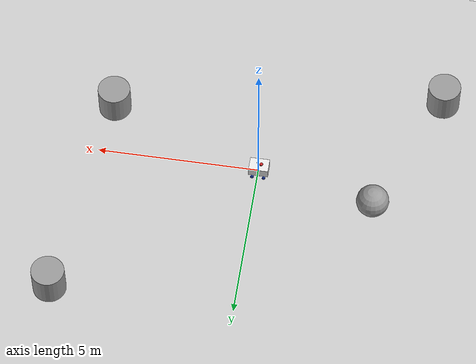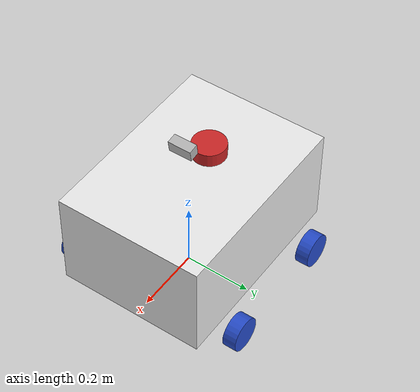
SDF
<sdf version="1.7">
 <world name="default">
  <light name="sun" type="directional">
   <pose>0 0 10 0 -0 0</pose>
   <diffuse>0.8 0.8 0.8 1</diffuse>
   <specular>0.2 0.2 0.2 1</specular>
   <attenuation>
    <range>1000</range>
    <constant>0.9</constant>
    <linear>0.01</linear>
    <quadratic>0.001</quadratic>
   </attenuation>
   <direction>-0.5 0.1 -0.9</direction>
   <spot><inner_angle>0</inner_angle><outer_angle>0</outer_angle><falloff>0</falloff></spot>
  </light>
  <model name="ground_plane">
   <static>1</static>
   <link name="link">
    <collision name="collision">
     <geometry><plane><normal>0 0 1</normal><size>100 100</size></plane></geometry>
     <surface>
      <contact><collide_bitmask>65535</collide_bitmask></contact>
      <friction><ode><mu>100</mu><mu2>50</mu2></ode></friction>
     </surface>
    </collision>
    <visual name="visual">
     <cast_shadows>0</cast_shadows>
     <geometry><plane><normal>0 0 1</normal><size>100 100</size></plane></geometry>
     <material>
      <script><uri>file://media/materials/scripts/gazebo.material</uri><name>Gazebo/Grey</name></script>
     </material>
    </visual>
   </link>
  </model>
  <gravity>0 0 -9.8</gravity>
  <magnetic_field>6e-06 2.3e-05 -4.2e-05</magnetic_field>
  <atmosphere type="adiabatic"/>
  <physics type="ode">
   <max_step_size>0.001</max_step_size>
   <real_time_factor>1</real_time_factor>
   <real_time_update_rate>1000</real_time_update_rate>
  </physics>
  <scene><ambient>0.4 0.4 0.4 1</ambient><background>0.7 0.7 0.7 1</background><shadows>1</shadows></scene>
  <audio><device>default</device></audio>
  <spherical_coordinates>
   <surface_model>EARTH_WGS84</surface_model>
   <latitude_deg>0</latitude_deg>
   <longitude_deg>0</longitude_deg>
   <elevation>0</elevation>
   <heading_deg>0</heading_deg>
  </spherical_coordinates>
  <model name="mybot_2wd">
   <link name="base_link">
    <inertial>
     <pose>-0.002222 0 0.16619 0 -0 0</pose>
     <mass>3.15</mass>
     <inertia>
      <ixx>0.0738743</ixx>
      <ixy>0</ixy>
      <ixz>0.00114667</ixz>
      <iyy>0.115949</iyy>
      <iyz>0</iyz>
      <izz>0.139007</izz>
     </inertia>
    </inertial>
    <collision name="base_link_fixed_joint_lump__chassis_collision">
     <pose>0 0 0.16 0 -0 0</pose>
     <geometry><box><size>0.6 0.44 0.3</size></box></geometry>
    </collision>
    <collision name="base_link_fixed_joint_lump__imu_link_collision_1">
     <pose>0 0 0.21 0 -0 0</pose>
     <geometry><box><size>0.03 0.03 0.01</size></box></geometry>
    </collision>
    <collision name="base_link_fixed_joint_lump__laser_frame_collision_2">
     <pose>-0.07 0 0.33 0 -0 0</pose>
     <geometry><cylinder><length>0.04</length><radius>0.05</radius></cylinder></geometry>
    </collision>
    <visual name="base_link_fixed_joint_lump__chassis_visual">
     <pose>0 0 0.16 0 -0 0</pose>
     <geometry><box><size>0.6 0.44 0.3</size></box></geometry>
     <material>
      <script><name>Gazebo/White</name><uri>file://media/materials/scripts/gazebo.material</uri></script>
     </material>
    </visual>
    <visual name="base_link_fixed_joint_lump__camera_link_visual_1">
     <pose>0.05 0 0.43 0 0.15 0</pose>
     <geometry><box><size>0.03 0.07 0.035</size></box></geometry>
    </visual>
    <visual name="base_link_fixed_joint_lump__imu_link_visual_2">
     <pose>0 0 0.21 0 -0 0</pose>
     <geometry><box><size>0.03 0.03 0.01</size></box></geometry>
     <material>
      <script><name>Gazebo/Blue</name><uri>file://media/materials/scripts/gazebo.material</uri></script>
     </material>
    </visual>
    <visual name="base_link_fixed_joint_lump__laser_frame_visual_3">
     <pose>-0.07 0 0.33 0 -0 0</pose>
     <geometry><cylinder><length>0.04</length><radius>0.05</radius></cylinder></geometry>
     <material>
      <script><name>Gazebo/Red</name><uri>file://media/materials/scripts/gazebo.material</uri></script>
     </material>
    </visual>
    <sensor name="camera" type="camera">
     <visualize>1</visualize>
     <update_rate>30</update_rate>
     <camera>
      <horizontal_fov>1.047</horizontal_fov>
      <image><width>640</width><height>480</height><format>R8G8B8</format></image>
      <clip><near>0.1</near><far>10</far></clip>
     </camera>
     <plugin name="camera_controller" filename="libgazebo_ros_camera.so">
      <camera_name>camera</camera_name>
      <frame_name>camera_link_optical</frame_name>
     </plugin>
     <pose>0.05 0 0.43 0 0.15 0</pose>
    </sensor>
    <sensor name="imu_sensor" type="imu">
     <always_on>1</always_on>
     <update_rate>50</update_rate>
     <visualize>0</visualize>
     <plugin name="imu_plugin" filename="libgazebo_ros_imu_sensor.so">
      <ros><argument>~/out:=imu/data</argument></ros>
      <output_type>sensor_msgs/Imu</output_type>
      <frame_name>imu_link</frame_name>
     </plugin>
     <pose>0 0 0.21 0 -0 0</pose>
    </sensor>
    <sensor name="laser" type="ray">
     <visualize>0</visualize>
     <update_rate>10</update_rate>
     <ray>
      <scan>
       <horizontal>
        <samples>360</samples>
        <resolution>1</resolution>
        <min_angle>-3.14</min_angle>
        <max_angle>3.14</max_angle>
       </horizontal>
       <vertical><samples>1</samples><min_angle>0</min_angle><max_angle>0</max_angle></vertical>
      </scan>
      <range><min>0.3</min><max>12</max><resolution>0.01</resolution></range>
     </ray>
     <plugin name="laser_controller" filename="libgazebo_ros_ray_sensor.so">
      <ros><argument>~/out:=scan</argument></ros>
      <output_type>sensor_msgs/LaserScan</output_type>
      <frame_name>laser_frame</frame_name>
     </plugin>
     <pose>-0.07 0 0.33 0 -0 0</pose>
    </sensor>
   </link>
   <joint name="left_front_wheel_joint" type="revolute">
    <pose relative_to="base_link">0.18 0.275 0 -1.5707 0 0</pose>
    <parent>base_link</parent>
    <child>left_front_wheel</child>
    <axis>
     <xyz>0 0 1</xyz>
     <limit><lower>-1e+16</lower><upper>1e+16</upper></limit>
     <dynamics><spring_reference>0</spring_reference><spring_stiffness>0</spring_stiffness></dynamics>
    </axis>
   </joint>
   <link name="left_front_wheel">
    <pose relative_to="left_front_wheel_joint">0 0 0 0 -0 0</pose>
    <inertial>
     <mass>0.2</mass>
     <inertia>
      <ixx>0.000151667</ixx>
      <ixy>0</ixy>
      <ixz>0</ixz>
      <iyy>0.000151667</iyy>
      <iyz>0</iyz>
      <izz>0.00025</izz>
     </inertia>
    </inertial>
    <collision name="left_front_wheel_collision">
     <geometry><cylinder><length>0.04</length><radius>0.05</radius></cylinder></geometry>
    </collision>
    <visual name="left_front_wheel_visual">
     <geometry><cylinder><length>0.04</length><radius>0.05</radius></cylinder></geometry>
     <material>
      <script><name>Gazebo/Blue</name><uri>file://media/materials/scripts/gazebo.material</uri></script>
     </material>
    </visual>
   </link>
   <joint name="left_rear_wheel_joint" type="revolute">
    <pose relative_to="base_link">-0.18 0.275 0 -1.5707 0 0</pose>
    <parent>base_link</parent>
    <child>left_rear_wheel</child>
    <axis>
     <xyz>0 0 1</xyz>
     <limit><lower>-1e+16</lower><upper>1e+16</upper></limit>
     <dynamics><spring_reference>0</spring_reference><spring_stiffness>0</spring_stiffness></dynamics>
    </axis>
   </joint>
   <link name="left_rear_wheel">
    <pose relative_to="left_rear_wheel_joint">0 0 0 0 -0 0</pose>
    <inertial>
     <mass>0.2</mass>
     <inertia>
      <ixx>0.000151667</ixx>
      <ixy>0</ixy>
      <ixz>0</ixz>
      <iyy>0.000151667</iyy>
      <iyz>0</iyz>
      <izz>0.00025</izz>
     </inertia>
    </inertial>
    <collision name="left_rear_wheel_collision">
     <geometry><cylinder><length>0.04</length><radius>0.05</radius></cylinder></geometry>
     <surface><friction><ode><mu>0.001</mu><mu2>0.001</mu2></ode></friction></surface>
    </collision>
    <visual name="left_rear_wheel_visual">
     <geometry><cylinder><length>0.04</length><radius>0.05</radius></cylinder></geometry>
     <material>
      <script><name>Gazebo/Blue</name><uri>file://media/materials/scripts/gazebo.material</uri></script>
     </material>
    </visual>
   </link>
   <joint name="right_front_wheel_joint" type="revolute">
    <pose relative_to="base_link">0.18 -0.275 0 1.5707 -0 0</pose>
    <parent>base_link</parent>
    <child>right_front_wheel</child>
    <axis>
     <xyz>0 0 -1</xyz>
     <limit><lower>-1e+16</lower><upper>1e+16</upper></limit>
     <dynamics><spring_reference>0</spring_reference><spring_stiffness>0</spring_stiffness></dynamics>
    </axis>
   </joint>
   <link name="right_front_wheel">
    <pose relative_to="right_front_wheel_joint">0 0 0 0 -0 0</pose>
    <inertial>
     <mass>0.2</mass>
     <inertia>
      <ixx>0.000151667</ixx>
      <ixy>0</ixy>
      <ixz>0</ixz>
      <iyy>0.000151667</iyy>
      <iyz>0</iyz>
      <izz>0.00025</izz>
     </inertia>
    </inertial>
    <collision name="right_front_wheel_collision">
     <geometry><cylinder><length>0.04</length><radius>0.05</radius></cylinder></geometry>
    </collision>
    <visual name="right_front_wheel_visual">
     <geometry><cylinder><length>0.04</length><radius>0.05</radius></cylinder></geometry>
     <material>
      <script><name>Gazebo/Blue</name><uri>file://media/materials/scripts/gazebo.material</uri></script>
     </material>
    </visual>
   </link>
   <joint name="right_rear_wheel_joint" type="revolute">
    <pose relative_to="base_link">-0.18 -0.275 0 1.5707 -0 0</pose>
    <parent>base_link</parent>
    <child>right_rear_wheel</child>
    <axis>
     <xyz>0 0 -1</xyz>
     <limit><lower>-1e+16</lower><upper>1e+16</upper></limit>
     <dynamics><spring_reference>0</spring_reference><spring_stiffness>0</spring_stiffness></dynamics>
    </axis>
   </joint>
   <link name="right_rear_wheel">
    <pose relative_to="right_rear_wheel_joint">0 0 0 0 -0 0</pose>
    <inertial>
     <mass>0.2</mass>
     <inertia>
      <ixx>0.000151667</ixx>
      <ixy>0</ixy>
      <ixz>0</ixz>
      <iyy>0.000151667</iyy>
      <iyz>0</iyz>
      <izz>0.00025</izz>
     </inertia>
    </inertial>
    <collision name="right_rear_wheel_collision">
     <geometry><cylinder><length>0.04</length><radius>0.05</radius></cylinder></geometry>
     <surface><friction><ode><mu>0.001</mu><mu2>0.001</mu2></ode></friction></surface>
    </collision>
    <visual name="right_rear_wheel_visual">
     <geometry><cylinder><length>0.04</length><radius>0.05</radius></cylinder></geometry>
     <material>
      <script><name>Gazebo/Blue</name><uri>file://media/materials/scripts/gazebo.material</uri></script>
     </material>
    </visual>
   </link>
   <static>0</static>
   <plugin name="gazebo_ros2_control" filename="libgazebo_ros2_control.so">
    <parameters>/home/shreyas/Desktop/ros2_ws/install/mybot_2wd/share/mybot_2wd/config/my_controllers.yaml</parameters>
    <parameters>/home/shreyas/Desktop/ros2_ws/install/mybot_2wd/share/mybot_2wd/config/gaz_ros2_ctl_use_sim.yaml</parameters>
   </plugin>
   <pose>-0.014339 0.008258 0.050001 -1e-06 3e-06 0.005318</pose>
  </model>
  <model name="unit_cylinder">
   <pose>5.55407 5.03238 0.499993 -3e-06 -3e-06 0</pose>
   <link name="link">
    <inertial>
     <mass>1</mass>
     <inertia><ixx>0.145833</ixx><ixy>0</ixy><ixz>0</ixz><iyy>0.145833</iyy><iyz>0</iyz><izz>0.125</izz></inertia>
    </inertial>
    <collision name="collision">
     <geometry><cylinder><radius>0.5</radius><length>1</length></cylinder></geometry>
    </collision>
    <visual name="visual">
     <geometry><cylinder><radius>0.5</radius><length>1</length></cylinder></geometry>
     <material>
      <script><name>Gazebo/Grey</name><uri>file://media/materials/scripts/gazebo.material</uri></script>
     </material>
    </visual>
   </link>
  </model>
  <model name="unit_cylinder_0">
   <pose>4.77607 -1.63764 0.499997 3e-06 4e-06 -0</pose>
   <link name="link">
    <inertial>
     <mass>1</mass>
     <inertia><ixx>0.145833</ixx><ixy>0</ixy><ixz>0</ixz><iyy>0.145833</iyy><iyz>0</iyz><izz>0.125</izz></inertia>
    </inertial>
    <collision name="collision">
     <geometry><cylinder><radius>0.5</radius><length>1</length></cylinder></geometry>
    </collision>
    <visual name="visual">
     <geometry><cylinder><radius>0.5</radius><length>1</length></cylinder></geometry>
     <material>
      <script><name>Gazebo/Grey</name><uri>file://media/materials/scripts/gazebo.material</uri></script>
     </material>
    </visual>
   </link>
  </model>
  <model name="unit_sphere">
   <pose>-3.62126 0.864126 0.5 0 -0 0</pose>
   <link name="link">
    <inertial>
     <mass>1</mass>
     <inertia><ixx>0.1</ixx><ixy>0</ixy><ixz>0</ixz><iyy>0.1</iyy><iyz>0</iyz><izz>0.1</izz></inertia>
    </inertial>
    <collision name="collision"><geometry><sphere><radius>0.5</radius></sphere></geometry></collision>
    <visual name="visual">
     <geometry><sphere><radius>0.5</radius></sphere></geometry>
     <material>
      <script><name>Gazebo/Grey</name><uri>file://media/materials/scripts/gazebo.material</uri></script>
     </material>
    </visual>
   </link>
  </model>
  <model name="unit_cylinder_1">
   <pose>-5.33071 -3.26596 0.499997 3e-06 4e-06 -0</pose>
   <link name="link">
    <inertial>
     <mass>1</mass>
     <inertia><ixx>0.145833</ixx><ixy>0</ixy><ixz>0</ixz><iyy>0.145833</iyy><iyz>0</iyz><izz>0.125</izz></inertia>
    </inertial>
    <collision name="collision">
     <geometry><cylinder><radius>0.5</radius><length>1</length></cylinder></geometry>
    </collision>
    <visual name="visual">
     <geometry><cylinder><radius>0.5</radius><length>1</length></cylinder></geometry>
     <material>
      <script><name>Gazebo/Grey</name><uri>file://media/materials/scripts/gazebo.material</uri></script>
     </material>
    </visual>
   </link>
  </model>
 </world>
</sdf>
